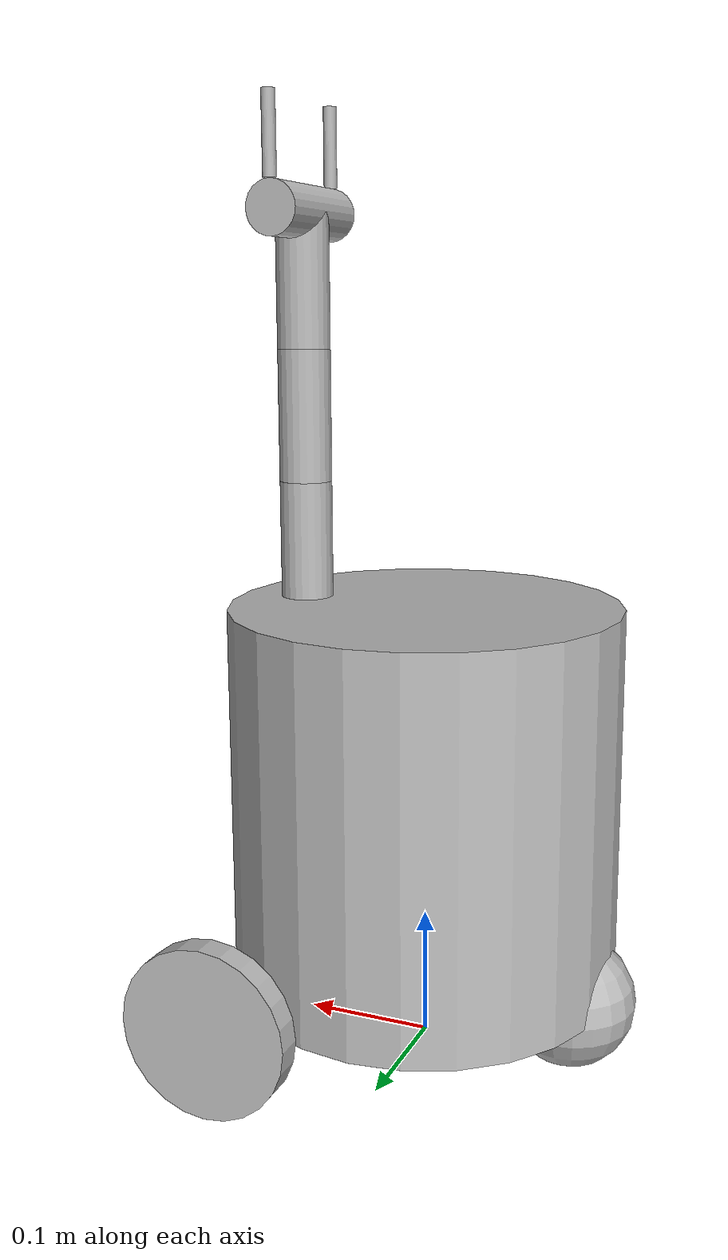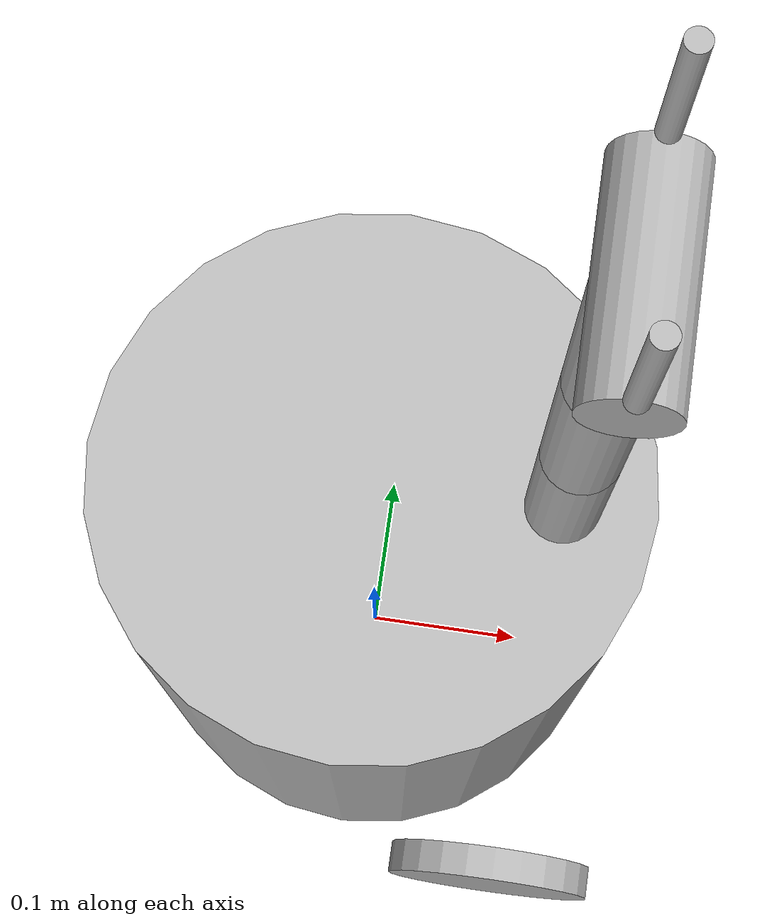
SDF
<?xml version='1.0'?>
<sdf version='1.6'>
  <model name='my_robot'>
    <link name='chassis'>
      <pose frame=''>0 0 0.2 0 -0 0</pose>
      <inertial>
        <mass>15</mass>
        <pose frame=''>0 0 0.1 0 -0 0</pose>
        <inertia>
          <ixx>0.35595</ixx>
          <iyy>1.525</iyy>
          <izz>0.1125</izz>
        </inertia>
      </inertial>
      <self_collide>0</self_collide>
      <kinematic>0</kinematic>
      <sensor name='ir4' type='ray'>
        <pose frame=''> 0.049 -0.152  0 0 -0 -1.2566370614</pose>
        <ray>
          <scan>
            <horizontal>
              <samples>1</samples>
              <resolution>1</resolution>
              <min_angle>-0.0001</min_angle>
              <max_angle>0.0001</max_angle>
            </horizontal>
            <vertical>
              <samples>1</samples>
              <min_angle>0</min_angle>
              <max_angle>0</max_angle>
            </vertical>
          </scan>
          <range>
            <min>0.08</min>
            <max>0.8</max>
            <resolution>0.01</resolution>
          </range>
          <noise>
            <type>gaussian</type>
            <mean>0</mean>
            <stddev>0.01</stddev>
          </noise>
        </ray>
        <plugin name='gazebo_ros_head_hokuyo_controller' filename='libgazebo_ros_laser.so'>
          <topicName>/ir</topicName>
          <frameName>ir4</frameName>
        </plugin>
        <always_on>1</always_on>
        <update_rate>10</update_rate>
        <visualize>1</visualize>
      </sensor>
      <sensor name='ir3' type='ray'>
        <pose frame=''> -0.1294427191 -0.09404564037 0 0 -0 -2.5132741229</pose>
        <ray>
          <scan>
            <horizontal>
              <samples>1</samples>
              <resolution>1</resolution>
              <min_angle>-0.0001</min_angle>
              <max_angle>0.0001</max_angle>
            </horizontal>
            <vertical>
              <samples>1</samples>
              <min_angle>0</min_angle>
              <max_angle>0</max_angle>
            </vertical>
          </scan>
          <range>
            <min>0.08</min>
            <max>0.8</max>
            <resolution>0.01</resolution>
          </range>
          <noise>
            <type>gaussian</type>
            <mean>0</mean>
            <stddev>0.01</stddev>
          </noise>
        </ray>
        <plugin name='gazebo_ros_head_hokuyo_controller' filename='libgazebo_ros_laser.so'>
          <topicName>/ir</topicName>
          <frameName>ir3</frameName>
        </plugin>
        <always_on>1</always_on>
        <update_rate>10</update_rate>
        <visualize>1</visualize>
      </sensor>
       <sensor name='ir2' type='ray'>
        <pose frame=''> -0.1294427191 0.09404564037 0 0 -0 2.5132741229</pose>
        <ray>
          <scan>
            <horizontal>
              <samples>1</samples>
              <resolution>1</resolution>
              <min_angle>-0.0001</min_angle>
              <max_angle>0.0001</max_angle>
            </horizontal>
            <vertical>
              <samples>1</samples>
              <min_angle>0</min_angle>
              <max_angle>0</max_angle>
            </vertical>
          </scan>
          <range>
            <min>0.08</min>
            <max>0.8</max>
            <resolution>0.01</resolution>
          </range>
          <noise>
            <type>gaussian</type>
            <mean>0</mean>
            <stddev>0.01</stddev>
          </noise>
        </ray>
        <plugin name='gazebo_ros_head_hokuyo_controller' filename='libgazebo_ros_laser.so'>
          <topicName>/ir</topicName>
          <frameName>ir2</frameName>
        </plugin>
        <always_on>1</always_on>
        <update_rate>10</update_rate>
        <visualize>1</visualize>
      </sensor>
      <sensor name='ir1' type='ray'>
        <pose frame=''>0.049 0.152  0 0 -0 1.2566370614</pose>
        <ray>
          <scan>
            <horizontal>
              <samples>1</samples>
              <resolution>1</resolution>
              <min_angle>-0.0001</min_angle>
              <max_angle>0.0001</max_angle>
            </horizontal>
            <vertical>
              <samples>1</samples>
              <min_angle>0</min_angle>
              <max_angle>0</max_angle>
            </vertical>
          </scan>
          <range>
            <min>0.08</min>
            <max>0.8</max>
            <resolution>0.01</resolution>
          </range>
          <noise>
            <type>gaussian</type>
            <mean>0</mean>
            <stddev>0.01</stddev>
          </noise>
        </ray>
        <plugin name='gazebo_ros_head_hokuyo_controller' filename='libgazebo_ros_laser.so'>
          <topicName>/ir</topicName>
          <frameName>ir1</frameName>
        </plugin>
        <always_on>1</always_on>
        <update_rate>10</update_rate>
        <visualize>1</visualize>
      </sensor>
      <sensor name='ir0' type='ray'>
        <pose frame=''>0.17 0 0 0 -0 0</pose>
        <ray>
          <scan>
            <horizontal>
              <samples>1</samples>
              <resolution>1</resolution>
              <min_angle>-0.0001</min_angle>
              <max_angle>0.0001</max_angle>
            </horizontal>
            <vertical>
              <samples>1</samples>
              <min_angle>0</min_angle>
              <max_angle>0</max_angle>
            </vertical>
          </scan>
          <range>
            <min>0.08</min>
            <max>0.8</max>
            <resolution>0.01</resolution>
          </range>
          <noise>
            <type>gaussian</type>
            <mean>0</mean>
            <stddev>0.01</stddev>
          </noise>
        </ray>
        <plugin name='gazebo_ros_head_hokuyo_controller' filename='libgazebo_ros_laser.so'>
          <topicName>/ir</topicName>
          <frameName>ir0</frameName>
        </plugin>
        <always_on>1</always_on>
        <update_rate>10</update_rate>
        <visualize>1</visualize>
      </sensor>
      <visual name='visual'>
        <geometry>
          <cylinder>
            <radius>0.15</radius>
            <length>0.3</length>
          </cylinder>
        </geometry>
        <pose frame=''>0 0 0 0 -0 0</pose>
        <cast_shadows>1</cast_shadows>
        <transparency>0</transparency>
      </visual>
      <visual name='caster_visual'>
        <pose frame=''>-0.12 0 -0.15 0 -0 0</pose>
        <geometry>
          <sphere>
            <radius>0.05</radius>
          </sphere>
        </geometry>
        <cast_shadows>1</cast_shadows>
        <transparency>0</transparency>
      </visual>
      <collision name='collision'>
        <laser_retro>0</laser_retro>
        <max_contacts>10</max_contacts>
        <pose frame=''>0 0 0 0 -0 0</pose>
        <geometry>
          <cylinder>
            <radius>0.15</radius>
            <length>0.3</length>
          </cylinder>
        </geometry>
      </collision>
      <collision name='caster_collision'>
        <laser_retro>0</laser_retro>
        <max_contacts>10</max_contacts>
        <pose frame=''>-0.12 0 -0.15 0 -0 0</pose>
        <geometry>
          <sphere>
            <radius>0.05</radius>
          </sphere>
        </geometry>
        <surface>
          <friction>
            <ode>
              <mu>0</mu>
              <mu2>0</mu2>
              <fdir1>0 0 0</fdir1>
              <slip1>1</slip1>
              <slip2>1</slip2>
            </ode>
            <torsional>
              <coefficient>1</coefficient>
              <patch_radius>0</patch_radius>
              <surface_radius>0</surface_radius>
              <use_patch_radius>1</use_patch_radius>
              <ode>
                <slip>0</slip>
              </ode>
            </torsional>
          </friction>
          <bounce>
            <restitution_coefficient>0</restitution_coefficient>
            <threshold>1e+06</threshold>
          </bounce>
          <contact>
            <collide_without_contact>0</collide_without_contact>
            <collide_without_contact_bitmask>1</collide_without_contact_bitmask>
            <collide_bitmask>1</collide_bitmask>
            <ode>
              <soft_cfm>0</soft_cfm>
              <soft_erp>0.2</soft_erp>
              <kp>1e+13</kp>
              <kd>1</kd>
              <max_vel>0.01</max_vel>
              <min_depth>0</min_depth>
            </ode>
            <bullet>
              <split_impulse>1</split_impulse>
              <split_impulse_penetration_threshold>-0.01</split_impulse_penetration_threshold>
              <soft_cfm>0</soft_cfm>
              <soft_erp>0.2</soft_erp>
              <kp>1e+13</kp>
              <kd>1</kd>
            </bullet>
          </contact>
        </surface>
      </collision>
    </link>
    <link name='left_wheel'>
      <pose frame=''>0.1 0.17 0.065 0.000558 1.5707 1.57126</pose>
      <inertial>
        <inertia>
          <ixx>1</ixx>
          <ixy>0</ixy>
          <ixz>0</ixz>
          <iyy>1</iyy>
          <iyz>0</iyz>
          <izz>1</izz>
        </inertia>
        <mass>1</mass>
      </inertial>
      <self_collide>0</self_collide>
      <kinematic>0</kinematic>
      <visual name='visual'>
        <geometry>
          <cylinder>
            <radius>0.065</radius>
            <length>0.02</length>
          </cylinder>
        </geometry>
        <pose frame=''>0 0 0 0 -0 0</pose>
      </visual>
      <collision name='collision'>
        <pose frame=''>0 0 0 0 -0 0</pose>
        <geometry>
          <cylinder>
            <radius>0.065</radius>
            <length>0.02</length>
          </cylinder>
        </geometry>
      </collision>
    </link>
    <link name='right_wheel'>
      <pose frame=''>0.1 -0.17 0.065 0.000558 1.5707 1.57126</pose>
      <inertial>
        <inertia>
          <ixx>1</ixx>
          <ixy>0</ixy>
          <ixz>0</ixz>
          <iyy>1</iyy>
          <iyz>0</iyz>
          <izz>1</izz>
        </inertia>
        <mass>1</mass>
      </inertial>
      <self_collide>0</self_collide>
      <kinematic>0</kinematic>
      <visual name='visual'>
        <geometry>
          <cylinder>
            <radius>0.065</radius>
            <length>0.02</length>
          </cylinder>
        </geometry>
        <pose frame=''>0 0 0 0 -0 0</pose>
        <cast_shadows>1</cast_shadows>
        <transparency>0</transparency>
      </visual>
      <collision name='collision'>
        <laser_retro>0</laser_retro>
        <max_contacts>10</max_contacts>
        <pose frame=''>0 0 0 0 -0 0</pose>
        <geometry>
          <cylinder>
            <radius>0.065</radius>
            <length>0.02</length>
          </cylinder>
        </geometry>
        <surface>
          <friction>
            <ode>
              <mu>1</mu>
              <mu2>1</mu2>
              <fdir1>0 0 0</fdir1>
              <slip1>0</slip1>
              <slip2>0</slip2>
            </ode>
            <torsional>
              <coefficient>1</coefficient>
              <patch_radius>0</patch_radius>
              <surface_radius>0</surface_radius>
              <use_patch_radius>1</use_patch_radius>
              <ode>
                <slip>0</slip>
              </ode>
            </torsional>
          </friction>
          <bounce>
            <restitution_coefficient>0</restitution_coefficient>
            <threshold>1e+06</threshold>
          </bounce>
          <contact>
            <collide_without_contact>0</collide_without_contact>
            <collide_without_contact_bitmask>1</collide_without_contact_bitmask>
            <collide_bitmask>1</collide_bitmask>
            <ode>
              <soft_cfm>0</soft_cfm>
              <soft_erp>0.2</soft_erp>
              <kp>1e+13</kp>
              <kd>1</kd>
              <max_vel>0.01</max_vel>
              <min_depth>0</min_depth>
            </ode>
            <bullet>
              <split_impulse>1</split_impulse>
              <split_impulse_penetration_threshold>-0.01</split_impulse_penetration_threshold>
              <soft_cfm>0</soft_cfm>
              <soft_erp>0.2</soft_erp>
              <kp>1e+13</kp>
              <kd>1</kd>
            </bullet>
          </contact>
        </surface>
      </collision>
    </link>

    <link name='arm0'>
      <pose frame=''>0.1 0 .39  0.0 0.0 0.0</pose>
      <self_collide>0</self_collide>
      <kinematic>0</kinematic>
      <visual name='arm_visual'>
        <geometry>
          <cylinder>
            <radius>0.02</radius>
            <length>0.1</length>
          </cylinder>
        </geometry>
        <pose frame=''>0 0 0 0 -0 0</pose>
      </visual>
      <collision name='arm_collision'>
        <pose frame=''>0 0 0 0 -0 0</pose>
        <geometry>
          <cylinder>
            <radius>0.02</radius>
            <length>0.1</length>
          </cylinder>
        </geometry>
      </collision>
    </link>

     <link name='arm1'>
      <pose frame=''>0.1 0 .49  0.0 0.0 0.0</pose>
      <self_collide>0</self_collide>
      <kinematic>0</kinematic>
      <visual name='arm1_visual'>
        <geometry>
          <cylinder>
            <radius>0.02</radius>
            <length>0.1</length>
          </cylinder>
        </geometry>
        <pose frame=''>0 0 0 0 -0 0</pose>
      </visual>
      <collision name='arm1_collision'>
        <pose frame=''>0 0 0 0 -0 0</pose>
        <geometry>
          <cylinder>
            <radius>0.02</radius>
            <length>0.1</length>
          </cylinder>
        </geometry>
      </collision>
    </link>

     <link name='arm2'>
      <pose frame=''>0.1 0 .59  0.0 0.0 0.0</pose>
      <self_collide>0</self_collide>
      <kinematic>0</kinematic>
      <visual name='arm2_visual'>
        <geometry>
          <cylinder>
            <radius>0.02</radius>
            <length>0.1</length>
          </cylinder>
        </geometry>
        <pose frame=''>0 0 0 0 -0 0</pose>
      </visual>
      <collision name='arm2_collision'>
        <pose frame=''>0 0 0 0 -0 0</pose>
        <geometry>
          <cylinder>
            <radius>0.02</radius>
            <length>0.1</length>
          </cylinder>
        </geometry>
      </collision>
    </link>

    <link name='palm'>
      <pose frame=''>0.1 0 .64  0.0 1.5707963268 1.5707963268</pose>
      <self_collide>0</self_collide>
      <kinematic>0</kinematic>
      <visual name='palm_visual'>
        <geometry>
          <cylinder>
            <radius>0.02</radius>
            <length>0.1</length>
          </cylinder>
        </geometry>
        <pose frame=''>0 0 0 0 -0 0</pose>
      </visual>
      <collision name='palm_collision'>
        <pose frame=''>0 0 0 0 -0 0</pose>
        <geometry>
          <cylinder>
            <radius>0.02</radius>
            <length>0.1</length>
          </cylinder>
        </geometry>
      </collision>
    </link>

    <link name='right_finger'>
      <pose frame=''>0.1 -0.05 0.69  0.0 0 0.0</pose>
      <self_collide>0</self_collide>
      <kinematic>0</kinematic>
      <visual name='right_finger_visual'>
        <geometry>
          <cylinder>
            <radius>0.005</radius>
            <length>0.06</length>
          </cylinder>
        </geometry>
        <pose frame=''>0 0 0 0 -0 0</pose>
      </visual>
      <collision name='right_finger_collision'>
        <pose frame=''>0 0 0 0 -0 0</pose>
        <geometry>
          <cylinder>
            <radius>0.005</radius>
            <length>0.06</length>
          </cylinder>
        </geometry>
      </collision>
    </link>

    <link name='left_finger'>
      <pose frame=''>0.1 0.05 0.69  0.0 0 0.0</pose>
      <self_collide>0</self_collide>
      <kinematic>0</kinematic>
      <visual name='left_finger_visual'>
        <geometry>
          <cylinder>
            <radius>0.005</radius>
            <length>0.06</length>
          </cylinder>
        </geometry>
        <pose frame=''>0 0 0 0 -0 0</pose>
      </visual>
      <collision name='left_finger_collision'>
        <pose frame=''>0 0 0 0 -0 0</pose>
        <geometry>
          <cylinder>
            <radius>0.005</radius>
            <length>0.06</length>
          </cylinder>
        </geometry>
      </collision>
    </link>

    <joint name='left_finger_joint' type='prismatic'>
      <parent>palm</parent>
      <child>left_finger</child>
      <pose frame=''>0 0 0 0 -0 0</pose>
      <axis>
        <xyz>0 1 0</xyz>
        <use_parent_model_frame>1</use_parent_model_frame>
        <limit>
          <lower>-0.05</lower>
          <upper>0.0</upper>
          <effort>100</effort>
          <velocity>100</velocity>
        </limit>
      </axis>
    </joint>

    <joint name='right_finger_joint' type='prismatic'>
      <parent>palm</parent>
      <child>right_finger</child>
      <pose frame=''>0 0 0 0 -0 0</pose>
      <axis>
        <xyz>0 1 0</xyz>
        <use_parent_model_frame>1</use_parent_model_frame>
        <limit>
          <lower>-0</lower>
          <upper>0.05</upper>
          <effort>100</effort>
          <velocity>100</velocity>
        </limit>
      </axis>
    </joint>

    <joint name='palm_joint' type='revolute'>
      <parent>arm2</parent>
      <child>palm</child>
      <pose frame=''>0 0 0 0 -0 0</pose>
      <axis>
        <xyz>0 1 0</xyz>
        <use_parent_model_frame>1</use_parent_model_frame>
        <limit>
          <lower>-1.5707963268</lower>
          <upper>1.5707963268</upper>
          <effort>100</effort>
          <velocity>100</velocity>
        </limit>
      </axis>
    </joint>

     <joint name='arm_joint_2' type='revolute'>
      <parent>arm1</parent>
      <child>arm2</child>
      <pose frame=''>0 0 -0.03 0 -0 0</pose>
      <axis>
        <xyz>0 1 0</xyz>
        <use_parent_model_frame>1</use_parent_model_frame>
        <limit>
          <lower>0</lower>
          <upper>1.578</upper>
          <effort>100</effort>
          <velocity>100</velocity>
        </limit>
      </axis>
    </joint>

     <joint name='arm_joint_1' type='revolute'>
      <parent>arm0</parent>
      <child>arm1</child>
      <pose frame=''>0 0 -0.03 0 -0 0</pose>
      <axis>
        <xyz>0 1 0</xyz>
        <use_parent_model_frame>1</use_parent_model_frame>
        <limit>
          <lower>0</lower>
          <upper>1.578</upper>
          <effort>100</effort>
          <velocity>100</velocity>
        </limit>
      </axis>
    </joint>

    <joint name='arm_joint_0' type='revolute'>
      <parent>chassis</parent>
      <child>arm0</child>
      <pose frame=''>0 0 -0.03 0 -0 0</pose>
      <axis>
        <xyz>0 1 0</xyz>
        <use_parent_model_frame>1</use_parent_model_frame>
        <limit>
          <lower>0</lower>
          <upper>1.578</upper>
          <effort>100</effort>
          <velocity>100</velocity>
        </limit>
      </axis>
    </joint>

    <joint name='left_wheel_hinge' type='revolute'>
      <parent>chassis</parent>
      <child>left_wheel</child>
      <pose frame=''>0 0 -0.03 0 -0 0</pose>
      <axis>
        <xyz>0 1 0</xyz>
        <use_parent_model_frame>1</use_parent_model_frame>
        <limit>
          <lower>-1e+16</lower>
          <upper>1e+16</upper>
          <effort>-1</effort>
          <velocity>-1</velocity>
        </limit>
        <dynamics>
          <spring_reference>0</spring_reference>
          <spring_stiffness>0</spring_stiffness>
          <damping>0</damping>
          <friction>0</friction>
        </dynamics>
      </axis>
      <physics>
        <ode>
          <limit>
            <cfm>0</cfm>
            <erp>0.2</erp>
          </limit>
          <suspension>
            <cfm>0</cfm>
            <erp>0.2</erp>
          </suspension>
        </ode>
      </physics>
    </joint>
    <joint name='right_wheel_hinge' type='revolute'>
      <parent>chassis</parent>
      <child>right_wheel</child>
      <pose frame=''>0 0 0.03 0 -0 0</pose>
      <axis>
        <xyz>0 1 0</xyz>
        <use_parent_model_frame>1</use_parent_model_frame>
        <limit>
          <lower>-1e+16</lower>
          <upper>1e+16</upper>
          <effort>-1</effort>
          <velocity>-1</velocity>
        </limit>
        <dynamics>
          <spring_reference>0</spring_reference>
          <spring_stiffness>0</spring_stiffness>
          <damping>0</damping>
          <friction>0</friction>
        </dynamics>
      </axis>
      <physics>
        <ode>
          <limit>
            <cfm>0</cfm>
            <erp>0.2</erp>
          </limit>
          <suspension>
            <cfm>0</cfm>
            <erp>0.2</erp>
          </suspension>
        </ode>
      </physics>
    </joint>
    <static>0</static>
    <allow_auto_disable>1</allow_auto_disable>
  </model>
</sdf>
